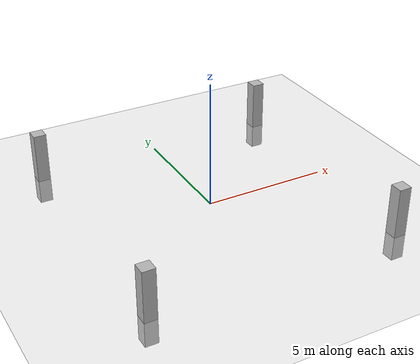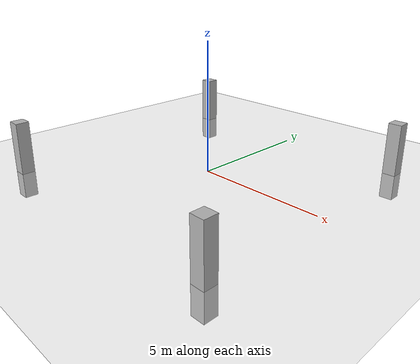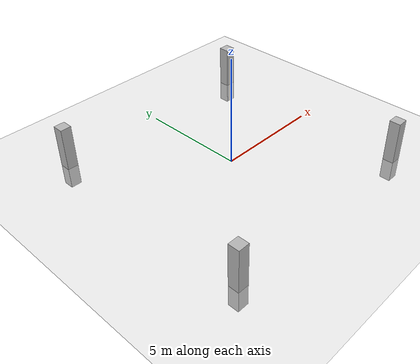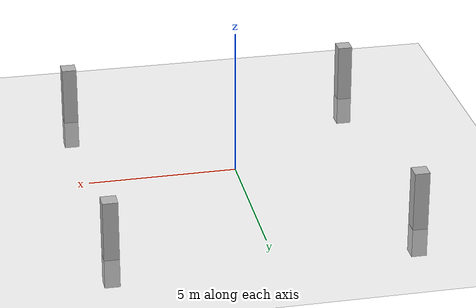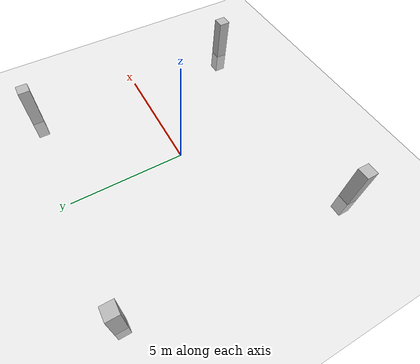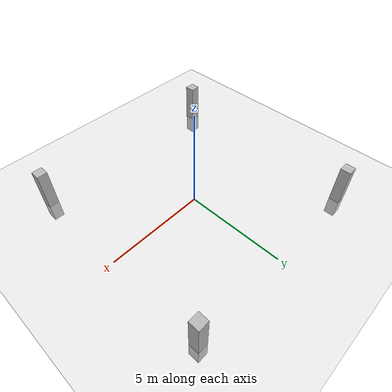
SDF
<?xml version="1.0" ?>
<sdf version="1.5">
  <world name="default">
    <light name='overhead' type='directional'>
      <cast_shadows>0</cast_shadows>
      <pose frame=''>-5 -5 3 0 -0 0</pose>
      <diffuse>0.8 0.8 0.7 1</diffuse>
      <specular>0.1 0.1 0.1 1</specular>
      <attenuation>
        <range>3</range>
        <constant>0</constant>
        <linear>0.9</linear>
        <quadratic>0.001</quadratic>
      </attenuation>
      <direction>0 0 -1</direction>
    </light>

    <scene><grid>false</grid></scene>

    <!-- Invisible ground plane -->
    <include>
      <uri>model://ground_plane</uri>
    </include>

    <gui>
      <camera name="user_camera">
        <pose>0 0 30 0 1.5 0</pose>
      </camera>
    </gui>

    <model name="column1">
      <pose>-5 -5 0.5 0 0 0</pose>
      <link name="link">
        <collision name="collision">
          <geometry>
            <box>
              <size>.5 .5 3</size>
            </box>
          </geometry>
        </collision>
        <visual name="visual">
          <geometry>
            <box>
              <size>.5 .5 3</size>
            </box>
          </geometry>
        </visual>
      </link>
      <static>true</static>
    </model>

    <model name="column2">
      <pose>-5 5 0.5 0 0 0</pose>
      <link name="link">
        <collision name="collision">
          <geometry>
            <box>
              <size>.5 .5 3</size>
            </box>
          </geometry>
        </collision>
        <visual name="visual">
          <geometry>
            <box>
              <size>.5 .5 3</size>
            </box>
          </geometry>
        </visual>
      </link>
      <static>true</static>
    </model>

    <model name="column3">
      <pose>5 -5 0.5 0 0 0</pose>
      <link name="link">
        <collision name="collision">
          <geometry>
            <box>
              <size>.5 .5 3</size>
            </box>
          </geometry>
        </collision>
        <visual name="visual">
          <geometry>
            <box>
              <size>.5 .5 3</size>
            </box>
          </geometry>
        </visual>
      </link>
      <static>true</static>
    </model>

    <model name="column4">
      <pose>5 5 0.5 0 0 0</pose>
      <link name="link">
        <collision name="collision">
          <geometry>
            <box>
              <size>.5 .5 3</size>
            </box>
          </geometry>
        </collision>
        <visual name="visual">
          <geometry>
            <box>
              <size>.5 .5 3</size>
            </box>
          </geometry>
        </visual>
      </link>
      <static>true</static>
    </model>

  </world>
</sdf>
